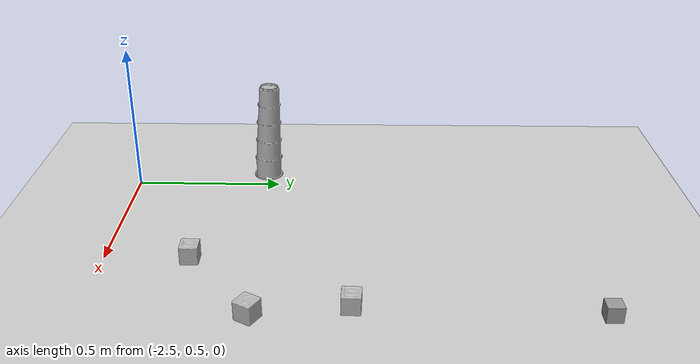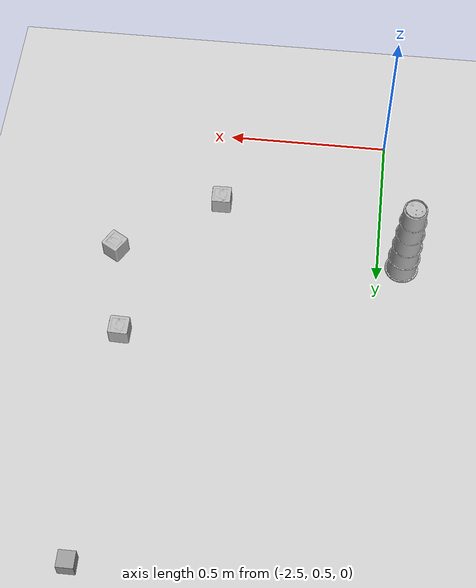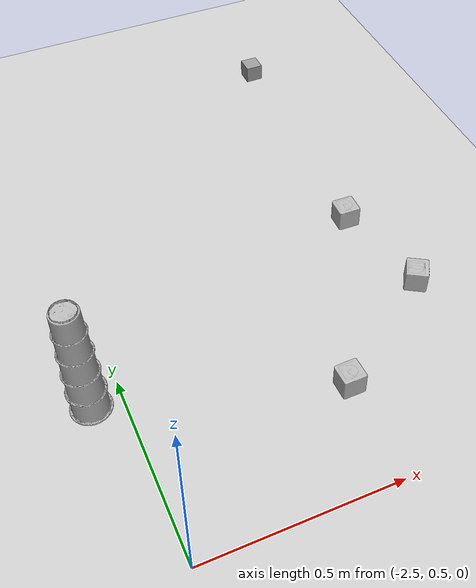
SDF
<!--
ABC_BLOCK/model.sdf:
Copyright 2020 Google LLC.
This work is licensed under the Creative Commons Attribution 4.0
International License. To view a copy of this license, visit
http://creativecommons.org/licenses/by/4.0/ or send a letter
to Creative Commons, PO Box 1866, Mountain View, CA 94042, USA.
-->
<sdf version="1.5">
 <world name="my_world">
  <light name="user_directional_light_0" type="directional">
   <pose>-1.93683 0.45544 3 0 -0 0</pose>
   <diffuse>0.5 0.5 0.5 1</diffuse>
   <specular>0.1 0.1 0.1 1</specular>
   <direction>0.1 0.1 -0.9</direction>
   <attenuation>
    <range>20</range>
    <constant>0.5</constant>
    <linear>0.01</linear>
    <quadratic>0.001</quadratic>
   </attenuation>
   <cast_shadows>0</cast_shadows>
  </light>
  <light name="user_spot_light_1" type="spot">
   <pose>-2.21149 0.514893 2.5 0 -.5 0.785</pose>
   <diffuse>0.4 0.4 0.4 1</diffuse>
   <specular>0.1 0.1 0.1 1</specular>
   <direction>0 0 -1</direction>
   <attenuation>
    <range>20</range>
    <constant>0.5</constant>
    <linear>0.01</linear>
    <quadratic>0.002</quadratic>
   </attenuation>
   <cast_shadows>0</cast_shadows>
   <spot><inner_angle>0.6</inner_angle><outer_angle>1</outer_angle><falloff>1</falloff></spot>
  </light>
  <light name="user_spot_light_2" type="spot">
   <pose>-1.21149 0.514893 2.5 0 -.5 1.785</pose>
   <diffuse>0.4 0.4 0.4 1</diffuse>
   <specular>0.1 0.1 0.1 1</specular>
   <direction>0 0 -1</direction>
   <attenuation>
    <range>20</range>
    <constant>0.5</constant>
    <linear>0.01</linear>
    <quadratic>0.002</quadratic>
   </attenuation>
   <cast_shadows>0</cast_shadows>
   <spot><inner_angle>0.6</inner_angle><outer_angle>1</outer_angle><falloff>1</falloff></spot>
  </light>
  <light name="user_spot_light_3" type="spot">
   <pose>-1.21149 3.2 2.5 0 -.4 3.785</pose>
   <diffuse>0.5 0.5 0.5 1</diffuse>
   <specular>0.1 0.1 0.1 1</specular>
   <direction>0 0 -1</direction>
   <attenuation>
    <range>20</range>
    <constant>0.5</constant>
    <linear>0.01</linear>
    <quadratic>0.001</quadratic>
   </attenuation>
   <cast_shadows>0</cast_shadows>
   <spot><inner_angle>0.6</inner_angle><outer_angle>1</outer_angle><falloff>1</falloff></spot>
  </light>
  <light name="user_spot_light_4" type="spot">
   <pose>-2.21149 3.2 2.5 0 -.4 4.785</pose>
   <diffuse>0.5 0.5 0.5 1</diffuse>
   <specular>0.1 0.1 0.1 1</specular>
   <direction>0 0 -1</direction>
   <attenuation>
    <range>20</range>
    <constant>0.5</constant>
    <linear>0.01</linear>
    <quadratic>0.001</quadratic>
   </attenuation>
   <cast_shadows>0</cast_shadows>
   <spot><inner_angle>0.6</inner_angle><outer_angle>1</outer_angle><falloff>1</falloff></spot>
  </light>
  <include><uri>model://sun</uri></include>
  <include>
   <uri>model://ABC_BLOCK</uri>
   <name>ABC_BLOCK_1</name>
   <pose>-2 0.8 0.026906 0 0 0.046622</pose>
   <scale>2 2 2</scale>
   <static>false</static>
  </include>
  <include>
   <uri>model://ABC_BLOCK</uri>
   <name>ABC_BLOCK_2</name>
   <pose>-1.75 1.3 0.026906 0 0 0</pose>
   <scale>2 2 2</scale>
   <static>false</static>
  </include>
  <include>
   <uri>model://ABC_BLOCK</uri>
   <scale>2 2 2</scale>
   <name>ABC_BLOCK_3</name>
   <pose>-1.72 1 0.036906 -3.14 0 -2.14</pose>
   <static>false</static>
  </include>
  <include>
   <uri>model://Baby_Elements_Stacking_Cups</uri>
   <name>Stacking Cups</name>
   <pose>-2.575 0.9547 0.00 0.0 0 0.0</pose>
   <static>false</static>
  </include>
  <model name="unit_box">
   <pose>-1.719416 1.994145 0.025252 0 0 0</pose>
   <link name="link">
    <inertial>
     <mass>0.06018</mass>
     <inertia>
      <ixx>2.50772E-05</ixx>
      <ixy>0</ixy>
      <ixz>0</ixz>
      <iyy>2.50772E-05</iyy>
      <iyz>0</iyz>
      <izz>2.50772E-05</izz>
     </inertia>
    </inertial>
    <collision name="collision">
     <geometry><box><size>0.05 0.05 0.05</size></box></geometry>
     <max_contacts>100</max_contacts>
     <surface>
      <friction>
       <ode><mu>1000</mu><mu2>1000</mu2><fdir1>1000 1000 1000</fdir1><slip1>0</slip1><slip2>0</slip2></ode>
       <bullet><friction>1</friction><friction2>1</friction2></bullet>
       <torsional><ode><coefficient>1700</coefficient><slip>0</slip></ode></torsional>
      </friction>
     </surface>
    </collision>
    <visual name="visual">
     <geometry><box><size>0.05 0.05 0.05</size></box></geometry>
     <material>
      <script><name>Gazebo/Grey</name><uri>file://media/materials/scripts/gazebo.material</uri></script>
     </material>
    </visual>
   </link>
  </model>
  <include><uri>model://ground_plane</uri><static>true</static></include>
 </world>
</sdf>

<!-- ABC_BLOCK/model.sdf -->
<sdf version="1.5">
    <model name="ABC_BLOCK">
        <static>true</static>
		<self_collide>true</self_collide>
        <link name="link_0">
            <self_collide>1</self_collide>
                <inertial>
                    <inertia>
                    <ixx>2.50772e-05</ixx>
                    <ixy>0</ixy>
                    <ixz>0</ixz>
                    <iyy>2.50772e-05</iyy>
                    <iyz>0</iyz>
                    <izz>2.50772e-05</izz>
                    </inertia>
                    <mass>0.0601</mass>
                </inertial>
            <collision name="ABC_BLOCK_collision">
                <pose frame=''>-0 -0.031 0 0 -0 0</pose>
                <geometry>
                	<box>
                        <size>0.06 0.06 0.06</size>
                        <scale> 2 2 2 </scale>
                    </box>
                </geometry>
            </collision>

            <visual name="ABC_BLOCK_visual">
                <cast_shadows>true</cast_shadows>
                <geometry>
                    <mesh>
                        <uri>model://ABC_BLOCK/meshes/model.dae</uri>
                        <scale> 2 2 2 </scale>
                    </mesh>
                </geometry>
                <surface>
                    <friction>
                        <ode>
                        <mu>10000</mu>
                        <mu2>10000</mu2>
                        <fdir1>0 0 0</fdir1>
                        <slip1>0</slip1>
                        <slip2>0</slip2>
                        </ode>
                        <torsional>
                        <coefficient>1000</coefficient>
                        <patch_radius>0</patch_radius>
                        <surface_radius>0</surface_radius>
                        <use_patch_radius>1</use_patch_radius>
                        <ode>
                            <slip>0</slip>
                        </ode>
                        </torsional>
                    </friction>
                    <bounce>
                        <restitution_coefficient>0</restitution_coefficient>
                        <threshold>1e+06</threshold>
                    </bounce>
                    <contact>
                        <collide_without_contact>0</collide_without_contact>
                        <collide_without_contact_bitmask>1</collide_without_contact_bitmask>
                        <collide_bitmask>1</collide_bitmask>
                        <ode>
                        <soft_cfm>0</soft_cfm>
                        <soft_erp>0.2</soft_erp>
                        <kp>1e+13</kp>
                        <kd>1</kd>
                        <max_vel>0.01</max_vel>
                        <min_depth>0</min_depth>
                        </ode>
                        <bullet>
                        <split_impulse>1</split_impulse>
                        <split_impulse_penetration_threshold>-0.01</split_impulse_penetration_threshold>
                        <soft_cfm>0</soft_cfm>
                        <soft_erp>0.2</soft_erp>
                        <kp>1e+13</kp>
                        <kd>1</kd>
                        </bullet>
                    </contact>
                </surface>
            </visual>
        </link>
    </model>
</sdf>

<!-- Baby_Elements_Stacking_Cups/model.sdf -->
<sdf version="1.5">
  <model name="Baby_Elements_Stacking_Cups">
    <self_collide>true</self_collide>
    <link name="link_0">
      <self_collide>1</self_collide>
      <!--estimated values for moments of inertia and mass-->
                <inertial>
                    <inertia>
                    <ixx>0.001403958333333</ixx>
                    <ixy>0</ixy>
                    <ixz>0</ixz>
                    <iyy>0.001403958333333</iyy>
                    <iyz>0</iyz>
                    <izz>0.00014125</izz>
                    </inertia>
                    <mass>0.1</mass>
                </inertial>
      <visual name="visual">
      <cast_shadows>true</cast_shadows>
        <geometry>
          <mesh>
            <uri>model://Baby_Elements_Stacking_Cups/meshes/model.dae</uri>
          </mesh>
        </geometry>
      </visual>
      <collision name="collision_0">
        <geometry>
          <mesh>
            <uri>model://Baby_Elements_Stacking_Cups/meshes/model.dae</uri>
          </mesh>
        </geometry>
      </collision>
    </link>
  </model>
</sdf>
